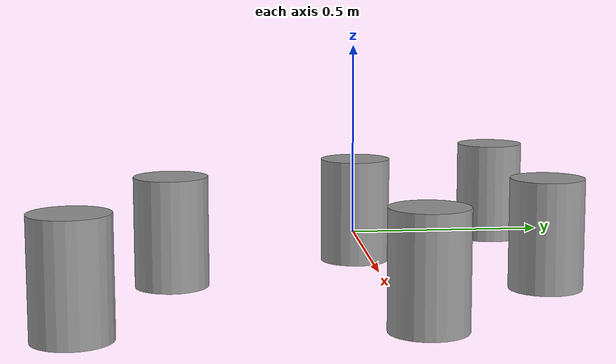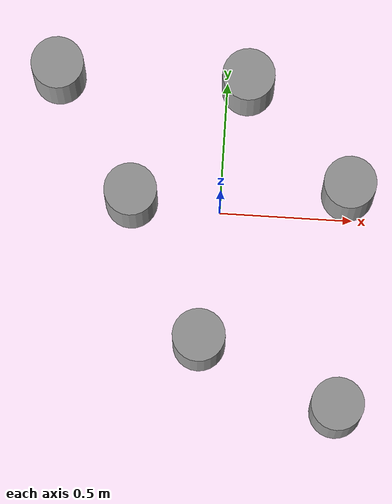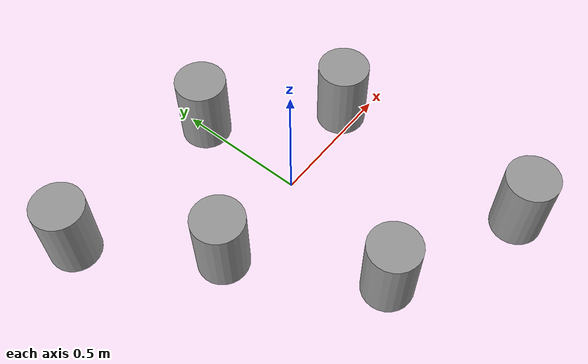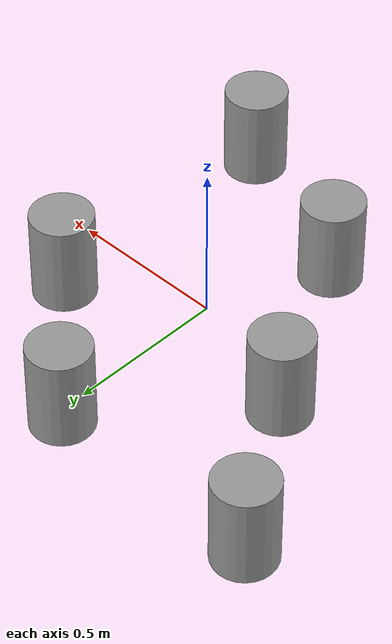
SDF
<?xml version='1.0'?>
<sdf version='1.6'>
  <model name='qmp_world2'>
    <link name='link_0_clone'>
      <inertial>
        <mass>1</mass>
        <inertia>
          <ixx>0.145833</ixx>
          <ixy>0</ixy>
          <ixz>0</ixz>
          <iyy>0.145833</iyy>
          <iyz>0</iyz>
          <izz>0.125</izz>
        </inertia>
        <pose frame=''>0 0 0 0 -0 0</pose>
      </inertial>
      <pose frame=''>-0.646084 0.515916 0 0 -0 0</pose>
      <gravity>1</gravity>
      <self_collide>0</self_collide>
      <kinematic>0</kinematic>
      <enable_wind>0</enable_wind>
      <visual name='visual'>
        <pose frame=''>0 0 0 0 -0 0</pose>
        <geometry>
          <cylinder>
            <radius>0.1</radius>
            <length>0.3</length>
          </cylinder>
        </geometry>
        <material>
          <lighting>1</lighting>
          <script>
            <uri>file://media/materials/scripts/gazebo.material</uri>
            <name>Gazebo/Grey</name>
          </script>
          <shader type='vertex'>
            <normal_map>__default__</normal_map>
          </shader>
          <ambient>0.3 0.3 0.3 1</ambient>
          <diffuse>0.7 0.7 0.7 1</diffuse>
          <specular>0.01 0.01 0.01 1</specular>
          <emissive>0 0 0 1</emissive>
        </material>
        <transparency>0</transparency>
        <cast_shadows>1</cast_shadows>
      </visual>
      <collision name='collision'>
        <laser_retro>0</laser_retro>
        <max_contacts>10</max_contacts>
        <pose frame=''>0 0 0 0 -0 0</pose>
        <geometry>
          <cylinder>
            <radius>0.1</radius>
            <length>0.3</length>
          </cylinder>
        </geometry>
        <surface>
          <friction>
            <ode>
              <mu>1</mu>
              <mu2>1</mu2>
              <fdir1>0 0 0</fdir1>
              <slip1>0</slip1>
              <slip2>0</slip2>
            </ode>
            <torsional>
              <coefficient>1</coefficient>
              <patch_radius>0</patch_radius>
              <surface_radius>0</surface_radius>
              <use_patch_radius>1</use_patch_radius>
              <ode>
                <slip>0</slip>
              </ode>
            </torsional>
          </friction>
          <bounce>
            <restitution_coefficient>0</restitution_coefficient>
            <threshold>1e+06</threshold>
          </bounce>
          <contact>
            <collide_without_contact>0</collide_without_contact>
            <collide_without_contact_bitmask>1</collide_without_contact_bitmask>
            <collide_bitmask>1</collide_bitmask>
            <ode>
              <soft_cfm>0</soft_cfm>
              <soft_erp>0.2</soft_erp>
              <kp>1e+13</kp>
              <kd>1</kd>
              <max_vel>0.01</max_vel>
              <min_depth>0</min_depth>
            </ode>
            <bullet>
              <split_impulse>1</split_impulse>
              <split_impulse_penetration_threshold>-0.01</split_impulse_penetration_threshold>
              <soft_cfm>0</soft_cfm>
              <soft_erp>0.2</soft_erp>
              <kp>1e+13</kp>
              <kd>1</kd>
            </bullet>
          </contact>
        </surface>
      </collision>
    </link>
    <link name='link_0_clone_1'>
      <inertial>
        <mass>1</mass>
        <inertia>
          <ixx>0.145833</ixx>
          <ixy>0</ixy>
          <ixz>0</ixz>
          <iyy>0.145833</iyy>
          <iyz>0</iyz>
          <izz>0.125</izz>
        </inertia>
        <pose frame=''>0 0 0 0 -0 0</pose>
      </inertial>
      <pose frame=''>0.478273 -0.712837 0 0 -0 0</pose>
      <gravity>1</gravity>
      <self_collide>0</self_collide>
      <kinematic>0</kinematic>
      <enable_wind>0</enable_wind>
      <visual name='visual'>
        <pose frame=''>0 0 0 0 -0 0</pose>
        <geometry>
          <cylinder>
            <radius>0.1</radius>
            <length>0.3</length>
          </cylinder>
        </geometry>
        <material>
          <lighting>1</lighting>
          <script>
            <uri>file://media/materials/scripts/gazebo.material</uri>
            <name>Gazebo/Grey</name>
          </script>
          <shader type='vertex'>
            <normal_map>__default__</normal_map>
          </shader>
          <ambient>0.3 0.3 0.3 1</ambient>
          <diffuse>0.7 0.7 0.7 1</diffuse>
          <specular>0.01 0.01 0.01 1</specular>
          <emissive>0 0 0 1</emissive>
        </material>
        <transparency>0</transparency>
        <cast_shadows>1</cast_shadows>
      </visual>
      <collision name='collision'>
        <laser_retro>0</laser_retro>
        <max_contacts>10</max_contacts>
        <pose frame=''>0 0 0 0 -0 0</pose>
        <geometry>
          <cylinder>
            <radius>0.1</radius>
            <length>0.3</length>
          </cylinder>
        </geometry>
        <surface>
          <friction>
            <ode>
              <mu>1</mu>
              <mu2>1</mu2>
              <fdir1>0 0 0</fdir1>
              <slip1>0</slip1>
              <slip2>0</slip2>
            </ode>
            <torsional>
              <coefficient>1</coefficient>
              <patch_radius>0</patch_radius>
              <surface_radius>0</surface_radius>
              <use_patch_radius>1</use_patch_radius>
              <ode>
                <slip>0</slip>
              </ode>
            </torsional>
          </friction>
          <bounce>
            <restitution_coefficient>0</restitution_coefficient>
            <threshold>1e+06</threshold>
          </bounce>
          <contact>
            <collide_without_contact>0</collide_without_contact>
            <collide_without_contact_bitmask>1</collide_without_contact_bitmask>
            <collide_bitmask>1</collide_bitmask>
            <ode>
              <soft_cfm>0</soft_cfm>
              <soft_erp>0.2</soft_erp>
              <kp>1e+13</kp>
              <kd>1</kd>
              <max_vel>0.01</max_vel>
              <min_depth>0</min_depth>
            </ode>
            <bullet>
              <split_impulse>1</split_impulse>
              <split_impulse_penetration_threshold>-0.01</split_impulse_penetration_threshold>
              <soft_cfm>0</soft_cfm>
              <soft_erp>0.2</soft_erp>
              <kp>1e+13</kp>
              <kd>1</kd>
            </bullet>
          </contact>
        </surface>
      </collision>
    </link>
    <link name='link_0_clone_clone'>
      <inertial>
        <mass>1</mass>
        <inertia>
          <ixx>0.145833</ixx>
          <ixy>0</ixy>
          <ixz>0</ixz>
          <iyy>0.145833</iyy>
          <iyz>0</iyz>
          <izz>0.125</izz>
        </inertia>
        <pose frame=''>0 0 0 0 -0 0</pose>
      </inertial>
      <pose frame=''>-0.340745 0.048216 0 0 -0 0</pose>
      <gravity>1</gravity>
      <self_collide>0</self_collide>
      <kinematic>0</kinematic>
      <enable_wind>0</enable_wind>
      <visual name='visual'>
        <pose frame=''>0 0 0 0 -0 0</pose>
        <geometry>
          <cylinder>
            <radius>0.1</radius>
            <length>0.3</length>
          </cylinder>
        </geometry>
        <material>
          <lighting>1</lighting>
          <script>
            <uri>file://media/materials/scripts/gazebo.material</uri>
            <name>Gazebo/Grey</name>
          </script>
          <shader type='vertex'>
            <normal_map>__default__</normal_map>
          </shader>
          <ambient>0.3 0.3 0.3 1</ambient>
          <diffuse>0.7 0.7 0.7 1</diffuse>
          <specular>0.01 0.01 0.01 1</specular>
          <emissive>0 0 0 1</emissive>
        </material>
        <transparency>0</transparency>
        <cast_shadows>1</cast_shadows>
      </visual>
      <collision name='collision'>
        <laser_retro>0</laser_retro>
        <max_contacts>10</max_contacts>
        <pose frame=''>0 0 0 0 -0 0</pose>
        <geometry>
          <cylinder>
            <radius>0.1</radius>
            <length>0.3</length>
          </cylinder>
        </geometry>
        <surface>
          <friction>
            <ode>
              <mu>1</mu>
              <mu2>1</mu2>
              <fdir1>0 0 0</fdir1>
              <slip1>0</slip1>
              <slip2>0</slip2>
            </ode>
            <torsional>
              <coefficient>1</coefficient>
              <patch_radius>0</patch_radius>
              <surface_radius>0</surface_radius>
              <use_patch_radius>1</use_patch_radius>
              <ode>
                <slip>0</slip>
              </ode>
            </torsional>
          </friction>
          <bounce>
            <restitution_coefficient>0</restitution_coefficient>
            <threshold>1e+06</threshold>
          </bounce>
          <contact>
            <collide_without_contact>0</collide_without_contact>
            <collide_without_contact_bitmask>1</collide_without_contact_bitmask>
            <collide_bitmask>1</collide_bitmask>
            <ode>
              <soft_cfm>0</soft_cfm>
              <soft_erp>0.2</soft_erp>
              <kp>1e+13</kp>
              <kd>1</kd>
              <max_vel>0.01</max_vel>
              <min_depth>0</min_depth>
            </ode>
            <bullet>
              <split_impulse>1</split_impulse>
              <split_impulse_penetration_threshold>-0.01</split_impulse_penetration_threshold>
              <soft_cfm>0</soft_cfm>
              <soft_erp>0.2</soft_erp>
              <kp>1e+13</kp>
              <kd>1</kd>
            </bullet>
          </contact>
        </surface>
      </collision>
    </link>
    <link name='link_0_clone_clone_0'>
      <inertial>
        <mass>1</mass>
        <inertia>
          <ixx>0.145833</ixx>
          <ixy>0</ixy>
          <ixz>0</ixz>
          <iyy>0.145833</iyy>
          <iyz>0</iyz>
          <izz>0.125</izz>
        </inertia>
        <pose frame=''>0 0 0 0 -0 0</pose>
      </inertial>
      <pose frame=''>-0.051785 -0.486426 0 0 -0 0</pose>
      <gravity>1</gravity>
      <self_collide>0</self_collide>
      <kinematic>0</kinematic>
      <enable_wind>0</enable_wind>
      <visual name='visual'>
        <pose frame=''>0 0 0 0 -0 0</pose>
        <geometry>
          <cylinder>
            <radius>0.1</radius>
            <length>0.3</length>
          </cylinder>
        </geometry>
        <material>
          <lighting>1</lighting>
          <script>
            <uri>file://media/materials/scripts/gazebo.material</uri>
            <name>Gazebo/Grey</name>
          </script>
          <shader type='vertex'>
            <normal_map>__default__</normal_map>
          </shader>
          <ambient>0.3 0.3 0.3 1</ambient>
          <diffuse>0.7 0.7 0.7 1</diffuse>
          <specular>0.01 0.01 0.01 1</specular>
          <emissive>0 0 0 1</emissive>
        </material>
        <transparency>0</transparency>
        <cast_shadows>1</cast_shadows>
      </visual>
      <collision name='collision'>
        <laser_retro>0</laser_retro>
        <max_contacts>10</max_contacts>
        <pose frame=''>0 0 0 0 -0 0</pose>
        <geometry>
          <cylinder>
            <radius>0.1</radius>
            <length>0.3</length>
          </cylinder>
        </geometry>
        <surface>
          <friction>
            <ode>
              <mu>1</mu>
              <mu2>1</mu2>
              <fdir1>0 0 0</fdir1>
              <slip1>0</slip1>
              <slip2>0</slip2>
            </ode>
            <torsional>
              <coefficient>1</coefficient>
              <patch_radius>0</patch_radius>
              <surface_radius>0</surface_radius>
              <use_patch_radius>1</use_patch_radius>
              <ode>
                <slip>0</slip>
              </ode>
            </torsional>
          </friction>
          <bounce>
            <restitution_coefficient>0</restitution_coefficient>
            <threshold>1e+06</threshold>
          </bounce>
          <contact>
            <collide_without_contact>0</collide_without_contact>
            <collide_without_contact_bitmask>1</collide_without_contact_bitmask>
            <collide_bitmask>1</collide_bitmask>
            <ode>
              <soft_cfm>0</soft_cfm>
              <soft_erp>0.2</soft_erp>
              <kp>1e+13</kp>
              <kd>1</kd>
              <max_vel>0.01</max_vel>
              <min_depth>0</min_depth>
            </ode>
            <bullet>
              <split_impulse>1</split_impulse>
              <split_impulse_penetration_threshold>-0.01</split_impulse_penetration_threshold>
              <soft_cfm>0</soft_cfm>
              <soft_erp>0.2</soft_erp>
              <kp>1e+13</kp>
              <kd>1</kd>
            </bullet>
          </contact>
        </surface>
      </collision>
    </link>
    <link name='link_0_clone_clone_1'>
      <inertial>
        <mass>1</mass>
        <inertia>
          <ixx>0.145833</ixx>
          <ixy>0</ixy>
          <ixz>0</ixz>
          <iyy>0.145833</iyy>
          <iyz>0</iyz>
          <izz>0.125</izz>
        </inertia>
        <pose frame=''>0 0 0 0 -0 0</pose>
      </inertial>
      <pose frame=''>0.078358 0.512464 0 0 -0 0</pose>
      <gravity>1</gravity>
      <self_collide>0</self_collide>
      <kinematic>0</kinematic>
      <enable_wind>0</enable_wind>
      <visual name='visual'>
        <pose frame=''>0 0 0 0 -0 0</pose>
        <geometry>
          <cylinder>
            <radius>0.1</radius>
            <length>0.3</length>
          </cylinder>
        </geometry>
        <material>
          <lighting>1</lighting>
          <script>
            <uri>file://media/materials/scripts/gazebo.material</uri>
            <name>Gazebo/Grey</name>
          </script>
          <shader type='vertex'>
            <normal_map>__default__</normal_map>
          </shader>
          <ambient>0.3 0.3 0.3 1</ambient>
          <diffuse>0.7 0.7 0.7 1</diffuse>
          <specular>0.01 0.01 0.01 1</specular>
          <emissive>0 0 0 1</emissive>
        </material>
        <transparency>0</transparency>
        <cast_shadows>1</cast_shadows>
      </visual>
      <collision name='collision'>
        <laser_retro>0</laser_retro>
        <max_contacts>10</max_contacts>
        <pose frame=''>0 0 0 0 -0 0</pose>
        <geometry>
          <cylinder>
            <radius>0.1</radius>
            <length>0.3</length>
          </cylinder>
        </geometry>
        <surface>
          <friction>
            <ode>
              <mu>1</mu>
              <mu2>1</mu2>
              <fdir1>0 0 0</fdir1>
              <slip1>0</slip1>
              <slip2>0</slip2>
            </ode>
            <torsional>
              <coefficient>1</coefficient>
              <patch_radius>0</patch_radius>
              <surface_radius>0</surface_radius>
              <use_patch_radius>1</use_patch_radius>
              <ode>
                <slip>0</slip>
              </ode>
            </torsional>
          </friction>
          <bounce>
            <restitution_coefficient>0</restitution_coefficient>
            <threshold>1e+06</threshold>
          </bounce>
          <contact>
            <collide_without_contact>0</collide_without_contact>
            <collide_without_contact_bitmask>1</collide_without_contact_bitmask>
            <collide_bitmask>1</collide_bitmask>
            <ode>
              <soft_cfm>0</soft_cfm>
              <soft_erp>0.2</soft_erp>
              <kp>1e+13</kp>
              <kd>1</kd>
              <max_vel>0.01</max_vel>
              <min_depth>0</min_depth>
            </ode>
            <bullet>
              <split_impulse>1</split_impulse>
              <split_impulse_penetration_threshold>-0.01</split_impulse_penetration_threshold>
              <soft_cfm>0</soft_cfm>
              <soft_erp>0.2</soft_erp>
              <kp>1e+13</kp>
              <kd>1</kd>
            </bullet>
          </contact>
        </surface>
      </collision>
    </link>
    <link name='link_0_clone_clone_2'>
      <inertial>
        <mass>1</mass>
        <inertia>
          <ixx>0.145833</ixx>
          <ixy>0</ixy>
          <ixz>0</ixz>
          <iyy>0.145833</iyy>
          <iyz>0</iyz>
          <izz>0.125</izz>
        </inertia>
        <pose frame=''>0 0 0 0 -0 0</pose>
      </inertial>
      <pose frame=''>0.481985 0.122653 0 0 -0 0</pose>
      <gravity>1</gravity>
      <self_collide>0</self_collide>
      <kinematic>0</kinematic>
      <enable_wind>0</enable_wind>
      <visual name='visual'>
        <pose frame=''>0 0 0 0 -0 0</pose>
        <geometry>
          <cylinder>
            <radius>0.1</radius>
            <length>0.3</length>
          </cylinder>
        </geometry>
        <material>
          <lighting>1</lighting>
          <script>
            <uri>file://media/materials/scripts/gazebo.material</uri>
            <name>Gazebo/Grey</name>
          </script>
          <shader type='vertex'>
            <normal_map>__default__</normal_map>
          </shader>
          <ambient>0.3 0.3 0.3 1</ambient>
          <diffuse>0.7 0.7 0.7 1</diffuse>
          <specular>0.01 0.01 0.01 1</specular>
          <emissive>0 0 0 1</emissive>
        </material>
        <transparency>0</transparency>
        <cast_shadows>1</cast_shadows>
      </visual>
      <collision name='collision'>
        <laser_retro>0</laser_retro>
        <max_contacts>10</max_contacts>
        <pose frame=''>0 0 0 0 -0 0</pose>
        <geometry>
          <cylinder>
            <radius>0.1</radius>
            <length>0.3</length>
          </cylinder>
        </geometry>
        <surface>
          <friction>
            <ode>
              <mu>1</mu>
              <mu2>1</mu2>
              <fdir1>0 0 0</fdir1>
              <slip1>0</slip1>
              <slip2>0</slip2>
            </ode>
            <torsional>
              <coefficient>1</coefficient>
              <patch_radius>0</patch_radius>
              <surface_radius>0</surface_radius>
              <use_patch_radius>1</use_patch_radius>
              <ode>
                <slip>0</slip>
              </ode>
            </torsional>
          </friction>
          <bounce>
            <restitution_coefficient>0</restitution_coefficient>
            <threshold>1e+06</threshold>
          </bounce>
          <contact>
            <collide_without_contact>0</collide_without_contact>
            <collide_without_contact_bitmask>1</collide_without_contact_bitmask>
            <collide_bitmask>1</collide_bitmask>
            <ode>
              <soft_cfm>0</soft_cfm>
              <soft_erp>0.2</soft_erp>
              <kp>1e+13</kp>
              <kd>1</kd>
              <max_vel>0.01</max_vel>
              <min_depth>0</min_depth>
            </ode>
            <bullet>
              <split_impulse>1</split_impulse>
              <split_impulse_penetration_threshold>-0.01</split_impulse_penetration_threshold>
              <soft_cfm>0</soft_cfm>
              <soft_erp>0.2</soft_erp>
              <kp>1e+13</kp>
              <kd>1</kd>
            </bullet>
          </contact>
        </surface>
      </collision>
    </link>
    <static>0</static>
    <allow_auto_disable>1</allow_auto_disable>
  </model>
</sdf>
